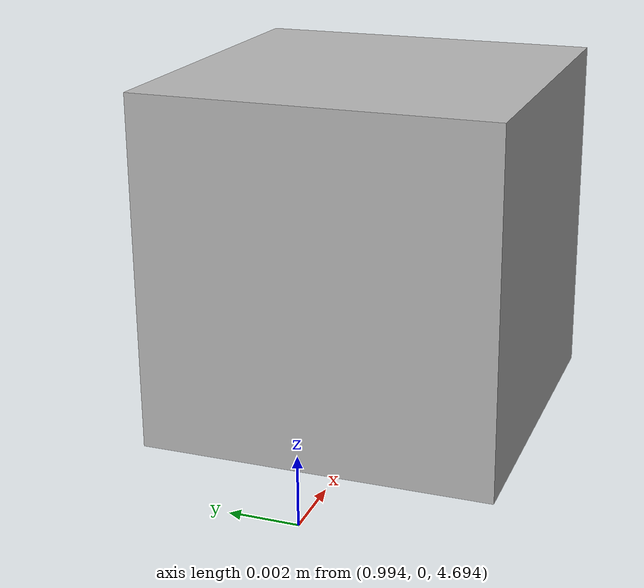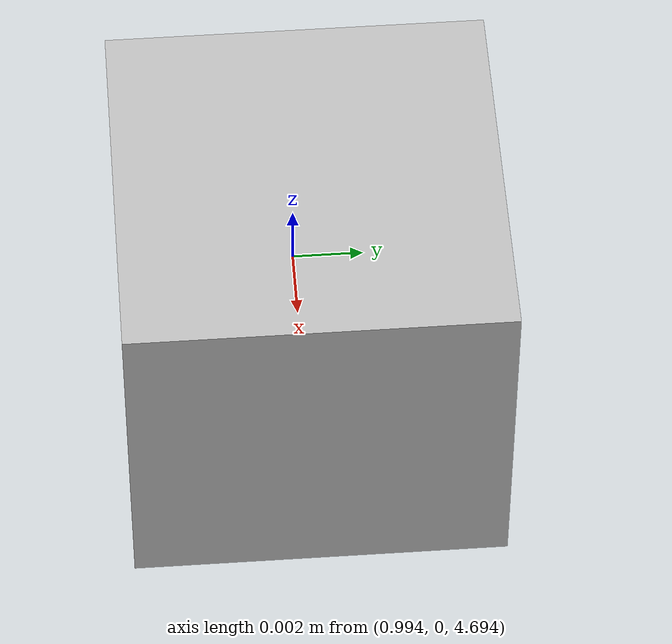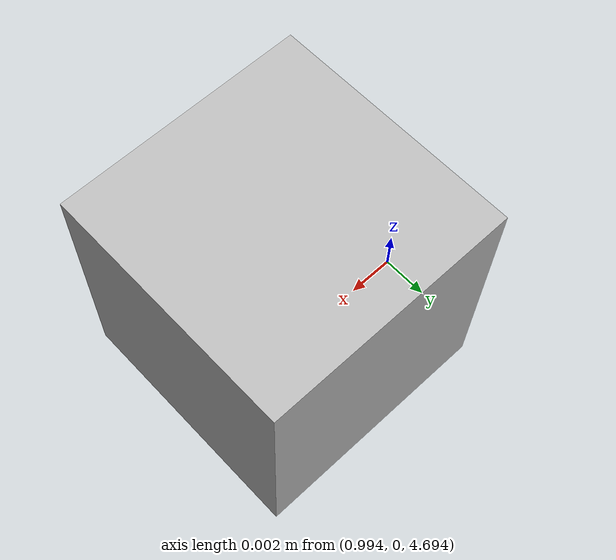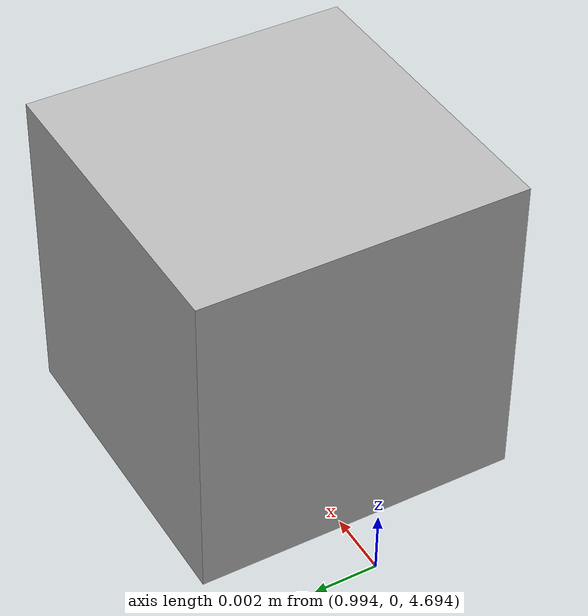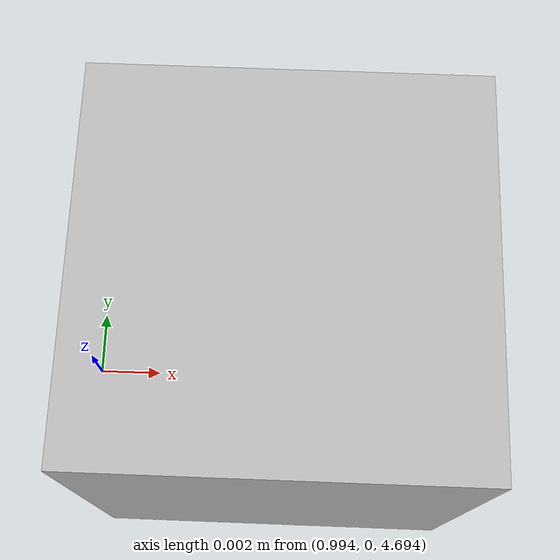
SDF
<?xml version="1.0" ?>
<sdf version="1.5">
	<world name="default">
		<include>
			<uri>model://sun</uri>
		</include>
		<include>
			<uri>model://ground_plane</uri>
		</include>
		<include>
			<uri>model://linetrack</uri>
			<pose>2 0 0 0 0 0</pose>
			<static>true</static>

		</include>
		<!-- camera -->
		<model name="camera">
			<pose>1 0 4.7 0 1.57 1.57</pose>  <!-- camera placed at a heigth of 15 feet-->
			<static>1</static>
			<link name='camera_link'>

				<inertial>
					<mass>0.1</mass>
					<inertia>
						<ixx>1</ixx>
						<ixy>0</ixy>
						<ixz>0</ixz>
						<iyy>1</iyy>
						<iyz>0</iyz>
						<izz>1</izz>
					</inertia>
				</inertial>
				<visual name='visual'>
					<geometry>
						<box>
							<size>0.01 0.01 0.01</size>
						</box>
					</geometry>
				</visual>
				<sensor type='camera' name='camera'>
					<camera name='overhead_cam'>
						<horizontal_fov>1.0</horizontal_fov>
						<image>
							<width>1280</width>
							<height>1280</height>
						</image>
						<clip>
							<near>0.1</near>
							<far>5.0</far>
						</clip>

					</camera>

					<plugin name='camera_control' filename='libgazebo_ros_camera.so'>
						<alwaysOn>true</alwaysOn>
						<updateRate>0</updateRate>
						<cameraName>gazebo/overhead_cam</cameraName>
						<imageTopicName>image</imageTopicName>
						<cameraInfoTopicName>camera_info</cameraInfoTopicName>
						<frameName>overhead_cam_frame</frameName>
					</plugin>
					<always_on>1</always_on>
					<update_rate>30</update_rate>
					<visualize>0</visualize>

				</sensor>

				<gravity>1</gravity>
			</link>
			<!-- camera link complete -->
		</model>

	</world>

</sdf>

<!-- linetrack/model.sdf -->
<sdf version="1.5">
    <model name="linetrack">
        <static>1</static>
        <link name="link">
            <pose>0 0 0.001 0 0 0</pose>

            <visual name="visual">
                <cast_shadows>false</cast_shadows>
                <geometry>
                    <plane>
                        <normal>0 0 1</normal>
                        <size>2 2</size>
                    </plane>
                </geometry>
                <material>
                    <script>
                        <uri>model://linetrack/scripts</uri>
                        <uri>model://linetrack/textures</uri>
                        <name>box/Diffuse</name>
                    </script>
                </material>
            </visual>
        </link>
    </model>
</sdf>
